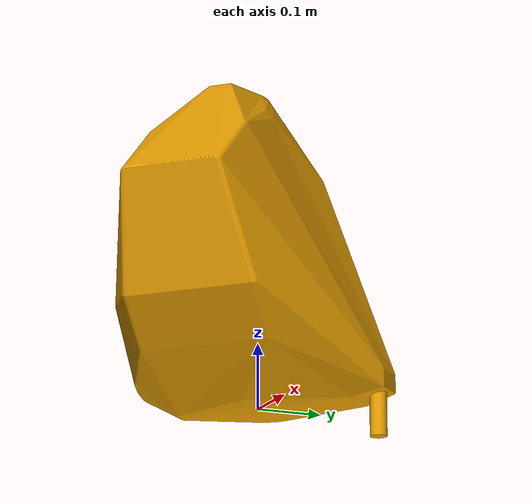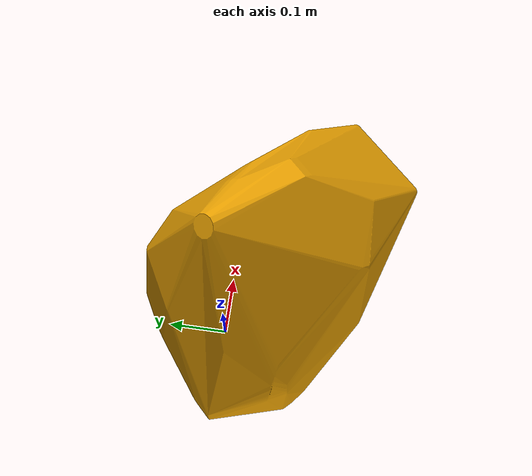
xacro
<?xml version="1.0" ?>

<!-- Automate 2017 Demo Cell "Structures" -->

<!-- Exports macro: "xacro:automate_demo_cell" with 1 arg: prefix -->
<!-- Root link: ${prefix}demo_cell_base_link -->
<!-- Origin is at the robot (IRB 1200) mounting location -->
<robot xmlns:xacro="http://ros.org/wiki/xacro">
  <link name="tool_base_link">
    <visual>
      <geometry>
        <mesh filename="package://godel_irb4600_support/meshes/visual/pushcorp.stl"/>
      </geometry>
    </visual>
    <collision>
      <geometry>
        <mesh filename="package://godel_irb4600_support/meshes/collision/pushcorp.stl"/>
      </geometry>
    </collision>
  </link>

  <link name="tcp_frame"/>

  <link name="keyence_tcp_frame"/>

  <link name="keyence_sensor_optical_frame"/>

  <link name="ensenso_sensor_optical_frame"/>

  <link name="kinect2_move_frame"/>

  <!-- Laser scanner joints -->
  <joint name="base_to_keyence_optical_frame" type="fixed">
    <parent link="keyence_optical_base"/>
    <child link="keyence_sensor_optical_frame"/>
    <origin xyz="0 0 0" rpy="0 0.015 0"/>
  </joint>

  <joint name="base_to_keyence_tcp_frame" type="fixed">
    <parent link="tool_base_link"/>
    <child link="keyence_tcp_frame"/>
    <origin xyz="0.339156 0.384732 0.360953" rpy="1.58005531679 0.882160345204 2.37121479211"/>
  </joint>

  <link name="keyence_optical_base"/>

  <joint name="base_to_keyence_optical_base" type="fixed">
    <parent link="tool_base_link"/>
    <child link="keyence_optical_base"/>
    <origin xyz="0.339156 0.384732 0.360953" rpy="-1.5615373368 0.882160345204 2.37121479211"/>
  </joint>

  <!-- Blending Frame -->
  <joint name="base_to_blending_tcp" type="fixed">
    <parent link="tool_base_link"/>
    <child link="tcp_frame"/>
    <origin xyz="-0.061890167647 0.064044258542 0.54800788851" rpy="-0.00320361244442 0.880669021029 2.32406931184"/>
  </joint>

  <!-- Macro-Scanner Frames -->
  <joint name="base_to_ensenso_optical_frame" type="fixed">
    <parent link="tool_base_link"/>
    <child link="ensenso_sensor_optical_frame"/>
    <origin xyz="0.10869 0.13329 0.24452" rpy="1.57078849029 -0.698132635299 2.35912486931"/>
  </joint>

  <joint name="base_to_kinect2_move_frame" type="fixed">
    <parent link="tool_base_link"/>
    <child link="kinect2_move_frame"/>
    <origin xyz="0.10869 0.13329 0.24452" rpy="0.698133962102 -6.85595277301e-06 0.788324521691"/>
  </joint>

  <!-- Special frame for collision avoidance -->
  <link name="tcp_model">
    <collision>
      <geometry>
        <mesh filename="package://godel_irb4600_support/meshes/collision/tcp.stl"/>
      </geometry>
    </collision>
  </link>

  <joint name="tcp_frame_to_model" type="fixed">
    <parent link="tcp_frame"/>
    <child link="tcp_model"/>
    <origin xyz="0 0 0"/>
  </joint>

</robot>
